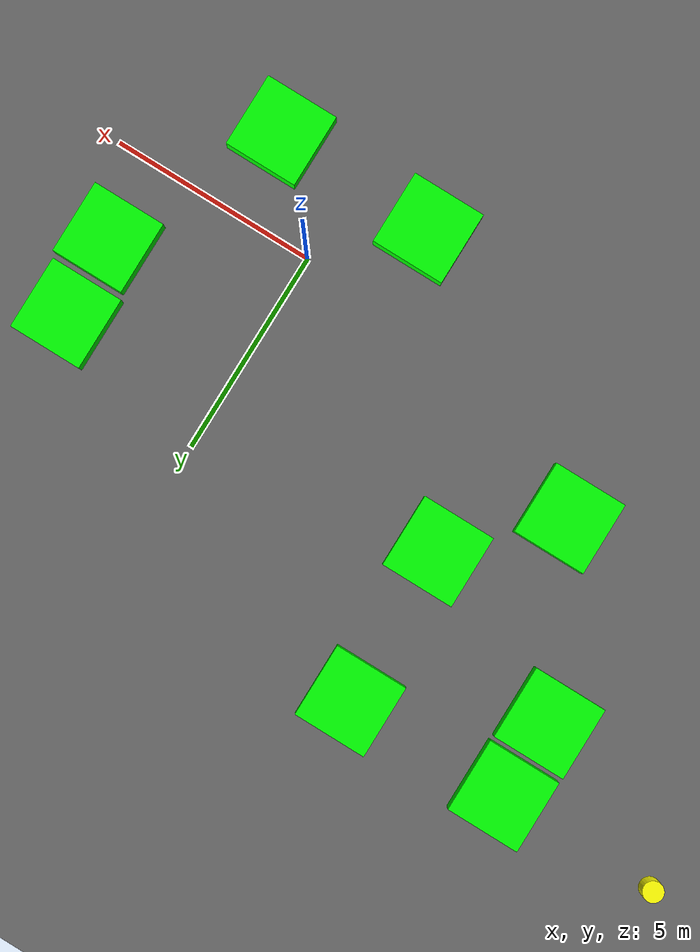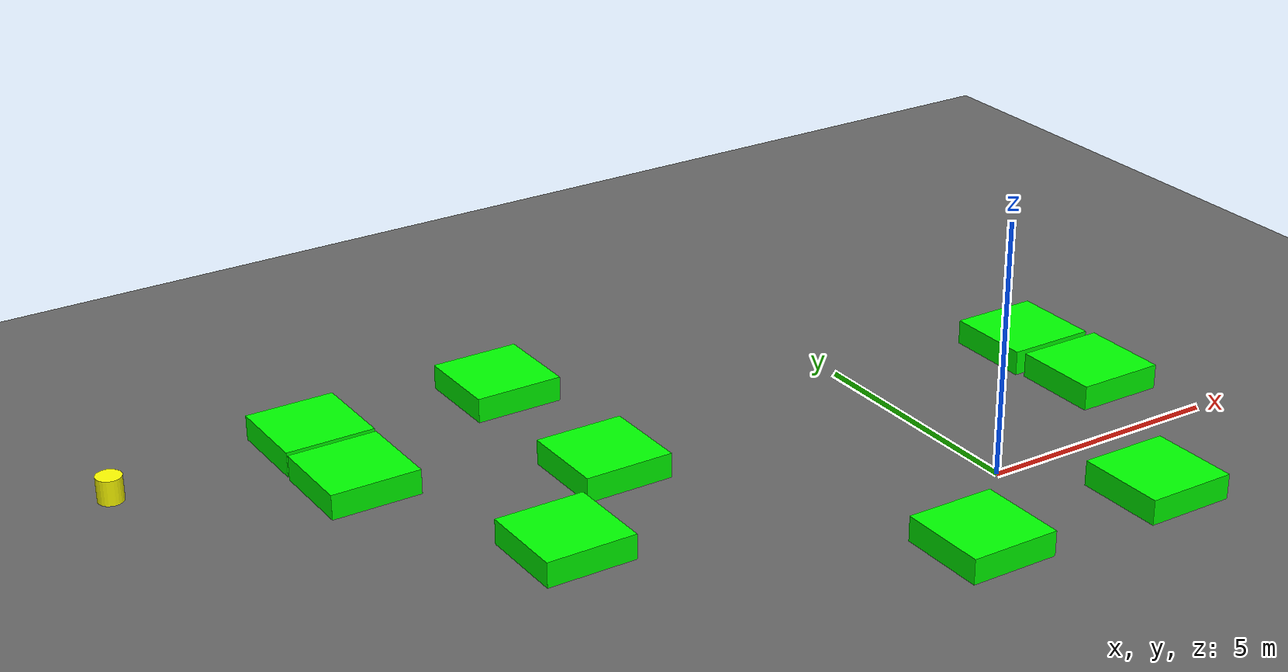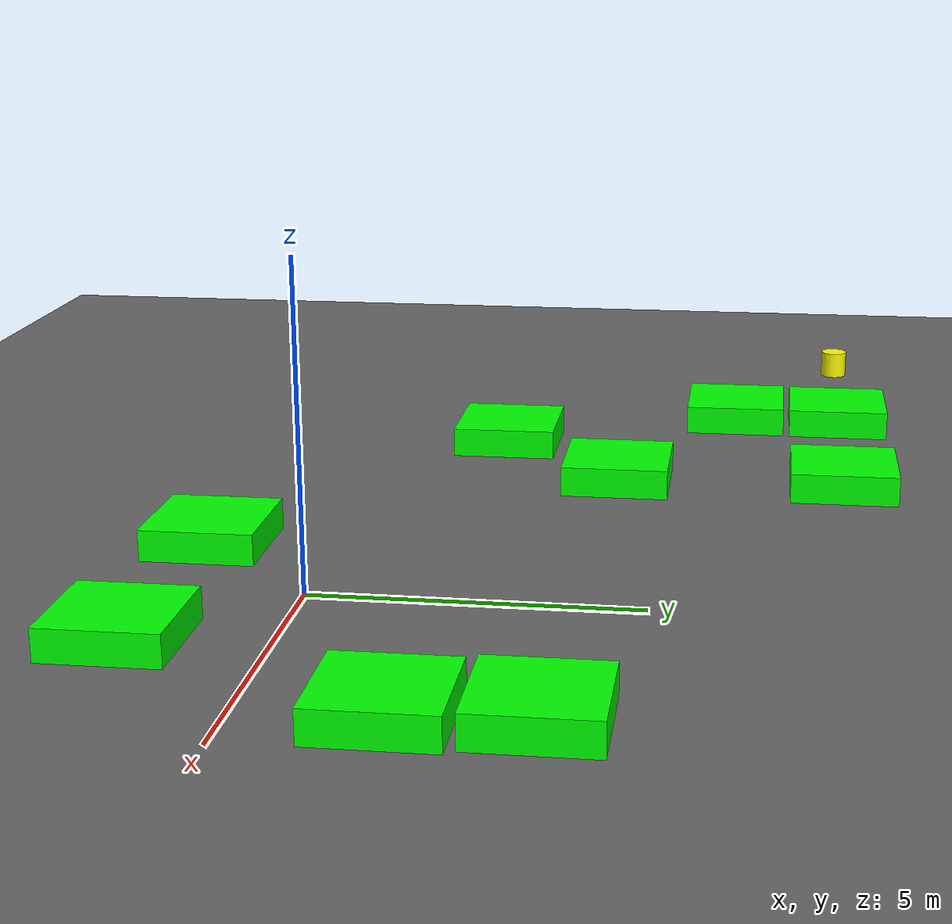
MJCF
<mujoco model="lvl4_standard_obs9_d3long_seed2030">
    <compiler angle="degree" coordinate="local" inertiafromgeom="true"/>
    <option integrator="RK4" timestep="0.01"/>

    <asset>
        <texture builtin="gradient" height="100" rgb1="0.6 0.8 1" rgb2="0 0 0" type="skybox" width="100"/>
        <texture name="floor_texture" type="2d" builtin="checker" width="100" height="100" rgb1="0 0 0" rgb2="0.8 0.8 0.8"/>
        <material name="MatPlane" reflectance="0.5" shininess="1" specular="1" texrepeat="10 10" texture="floor_texture"/>
    </asset>

    <!-- Excluding the contact between the agent and the goal, and the agent and the floor -->
    <contact>
        <exclude body1="agent" body2="goal"/>
        <exclude body1 = "agent" body2 = "floor"/>
    </contact>

    <extension>
        <plugin plugin = "mujoco.pid">
            <instance name = "pid1">
                <config key="kp" value="2"/>
                <config key="ki" value="0"/>
                <config key="kd" value="55"/>
            </instance>
        </plugin>
    </extension>

    <worldbody>
        <light cutoff="100" diffuse="1 1 1" dir="-0 0 -1.3" directional="true" exponent="1" pos="0 0 1.3" specular=".1 .1 .1"/>
        <body name="floor" pos="0 0 0">
            <geom name="floor_geom" type="plane" size="20 20 0.1" material="MatPlane"/>
        </body>

                <body name="goal" pos="0.0000 0.0000 0">
            <geom name="goal_geom" type="plane" size="0.5 0.5 1" pos="0 0 0" rgba="1 0 0 1"/>
        </body>

                <body name="agent" pos="-14.0000 8.0000 0.250">
            <joint name="j1" type="slide" axis ="1 0 0 "/>
            <joint name="j2" type="slide" axis ="0 1 0 "/>
            <geom name="agent_geom" type="cylinder" size="0.25 0.25 0.250" rgba="1 1 0 1"/>
        </body>

        <body name="obstacle1" pos="-10.0657 7.9464 0.250">  <geom name="obstacle1_geom" type="box" size="0.9000 0.9000 0.250" rgba="0 1 0 1"/></body>
        <body name="obstacle2" pos="-6.0623 7.9448 0.250">  <geom name="obstacle2_geom" type="box" size="0.9000 0.9000 0.250" rgba="0 1 0 1"/></body>
        <body name="obstacle3" pos="-10.0900 6.0319 0.250">  <geom name="obstacle3_geom" type="box" size="0.9000 0.9000 0.250" rgba="0 1 0 1"/></body>
        <body name="obstacle4" pos="-5.9694 4.0834 0.250">  <geom name="obstacle4_geom" type="box" size="0.9000 0.9000 0.250" rgba="0 1 0 1"/></body>
        <body name="obstacle5" pos="3.9097 3.9320 0.250">  <geom name="obstacle5_geom" type="box" size="0.9000 0.9000 0.250" rgba="0 1 0 1"/></body>
        <body name="obstacle6" pos="-8.0795 1.9069 0.250">  <geom name="obstacle6_geom" type="box" size="0.9000 0.9000 0.250" rgba="0 1 0 1"/></body>
        <body name="obstacle7" pos="4.0075 1.9918 0.250">  <geom name="obstacle7_geom" type="box" size="0.9000 0.9000 0.250" rgba="0 1 0 1"/></body>
        <body name="obstacle8" pos="-1.9765 -1.9618 0.250">  <geom name="obstacle8_geom" type="box" size="0.9000 0.9000 0.250" rgba="0 1 0 1"/></body>
        <body name="obstacle9" pos="1.9797 -2.0962 0.250">  <geom name="obstacle9_geom" type="box" size="0.9000 0.9000 0.250" rgba="0 1 0 1"/></body>

    </worldbody>

    <sensor>
<!-- SENSORS -->

        <distance name="dist1" geom1="agent_geom" geom2="obstacle1_geom" cutoff="1.5"/>
        <distance name="dist2" geom1="agent_geom" geom2="obstacle2_geom" cutoff="1.5"/>
        <distance name="dist3" geom1="agent_geom" geom2="obstacle3_geom" cutoff="1.5"/>
        <distance name="dist4" geom1="agent_geom" geom2="obstacle4_geom" cutoff="1.5"/>
        <distance name="dist5" geom1="agent_geom" geom2="obstacle5_geom" cutoff="1.5"/>
        <distance name="dist6" geom1="agent_geom" geom2="obstacle6_geom" cutoff="1.5"/>
        <distance name="dist7" geom1="agent_geom" geom2="obstacle7_geom" cutoff="1.5"/>
        <distance name="dist8" geom1="agent_geom" geom2="obstacle8_geom" cutoff="1.5"/>
        <distance name="dist9" geom1="agent_geom" geom2="obstacle9_geom" cutoff="1.5"/>
</sensor>

    <actuator>
        <plugin joint="j1" plugin="mujoco.pid" instance="pid1" />
        <plugin joint="j2" plugin="mujoco.pid" instance="pid1"/>
    </actuator>
</mujoco>
